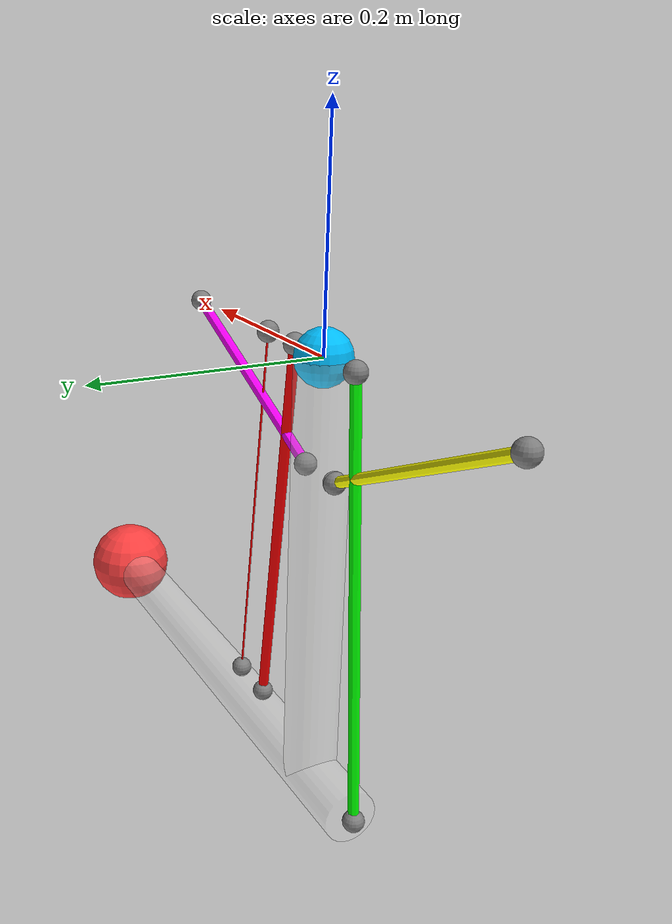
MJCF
<mujoco model="two-joint-limb">
  <option gravity="0 9.81 0"/>

  <default>
    <joint damping="0.1"/>
    <geom rgba="1 1 1 .25"/>
    <muscle ctrllimited="true" ctrlrange="0 1"/>
  </default>

  <worldbody>
    <light pos="0 1 1" dir="0 -1 -1" diffuse="1 1 1"/>

    <!-- TRUNK -->
    <body name="trunk" pos="0 0 0">

      <!-- tendon attachment sites -->
      <site name="deltoid1" pos=".25 0 0" size="0.01"/>
      <site name="latissimus1" pos="-0.25 0 0" size="0.01"/>

      <!-- UPPER ARM -->
      <body name="upper_arm" pos="0 0 0">

        <!-- shoulder -->
        <joint name="shoulder" type="hinge" axis="0 1 0" range = "-60 60"/>

        <!-- tendon attachment sites -->
        <site name="deltoid2" pos="0.025 0 -.1" size="0.01"/>
        <site name="latissimus2" pos="-0.025 0 -.1" size="0.01"/>
        <site name="biceps1" pos="0.05 0 0" size="0.01"/>
        <site name="triceps1" pos="-0.05 0 0" size="0.01"/>

        <site name="biceps_intrafusal_1" pos="0.1 0 0" size="0.01"/>

        <!-- humerus -->
        <geom name="humerus" type="cylinder" size="0.025" fromto="0 0 0  0 0 -.4"/>

        <!-- LOWER ARM -->
        <body name="lower_arm" pos="0 0 -0.4">

          <!-- elbow -->
          <joint name="elbow" type="hinge" axis="0 1 0" range = "-60 60"/>

          <!-- tendon attachment sites -->
          <site name="biceps2" pos="0.1 0 .03" size="0.01"/>
          <site name="triceps2" pos="-.08 0 0" size="0.01"/>

          <site name="biceps_intrafusal_2" pos="0.15 0 .03" size="0.01"/>

          <!-- radius -->
          <geom name="radius" type="cylinder" size="0.025" fromto="-.075 0 0 .5 0 0"/>

          <!-- HAND -->
          <body name="hand" pos="0.5 0 0">
            <geom name="hand" type="sphere" size="0.05" pos="0 0 0" rgba="1 .25 .25 1"/>
          </body>
        </body>
      </body>
    </body>

    <body name="target" mocap="true" pos="0 0 0">
      <geom name = "target" size=".025" type="sphere" contype="0" conaffinity="0" group="1" rgba="0 .75 1 1"/>
    </body>
  </worldbody>

  <tendon>
    <spatial name="deltoid_tendon" limited="true" range="0 1" width="0.005" rgba="1 0 1 1">
      <site site="deltoid1"/>
      <site site="deltoid2"/>
    </spatial>

    <spatial name="latissimus_tendon" limited="true" range="0 1" width="0.005" rgba="1 1 0 1">
      <site site="latissimus1"/>
      <site site="latissimus2"/>
    </spatial>

    <spatial name="biceps_tendon" limited="true" range="0 .485" width="0.005" rgba="1 0 0 1">
      <site site="biceps1"/>
      <geom geom="humerus"/>
      <site site="biceps2"/>
    </spatial>

    <spatial name="biceps_intrafusal_tendon" limited="true" range="0 .485" width="0.001" rgba="1 0 0 1">
      <site site="biceps_intrafusal_1"/>
      <site site="biceps_intrafusal_2"/>
    </spatial>

    <spatial name="triceps_tendon" limited="true" range="0 .5" width="0.005" rgba="0 1 0 1">
      <site site="triceps1"/>
      <geom geom="radius"/>
      <site site="triceps2"/>
    </spatial>
  </tendon>

  <actuator>
    <muscle name="deltoid" tendon="deltoid_tendon" ctrlrange="0 1" force="100"/>
    <muscle name="latissimus" tendon="latissimus_tendon" ctrlrange="0 1" force="100"/>
    <muscle name="biceps" tendon="biceps_tendon" ctrlrange="0 1" force="100"/>
    <muscle name="triceps" tendon="triceps_tendon" ctrlrange="0 1" force="100"/>
  </actuator>

  <sensor>
    <actuatorpos name="deltoid_length" actuator="deltoid"/>
    <actuatorpos name="latissimus_length" actuator="latissimus"/>
    <actuatorpos name="biceps_length" actuator="biceps"/>
    <actuatorpos name="triceps_length" actuator="triceps"/>
    <actuatorvel name="deltoid_velocity" actuator="deltoid"/>
    <actuatorvel name="latissimus_velocity" actuator="latissimus"/>
    <actuatorvel name="biceps_velocity" actuator="biceps"/>
    <actuatorvel name="triceps_velocity" actuator="triceps"/>
    <actuatorfrc name="deltoid_force" actuator="deltoid"/>
    <actuatorfrc name="latissimus_force" actuator="latissimus"/>
    <actuatorfrc name="biceps_force" actuator="biceps"/>
    <actuatorfrc name="triceps_force" actuator="triceps"/>
  </sensor>

</mujoco>
